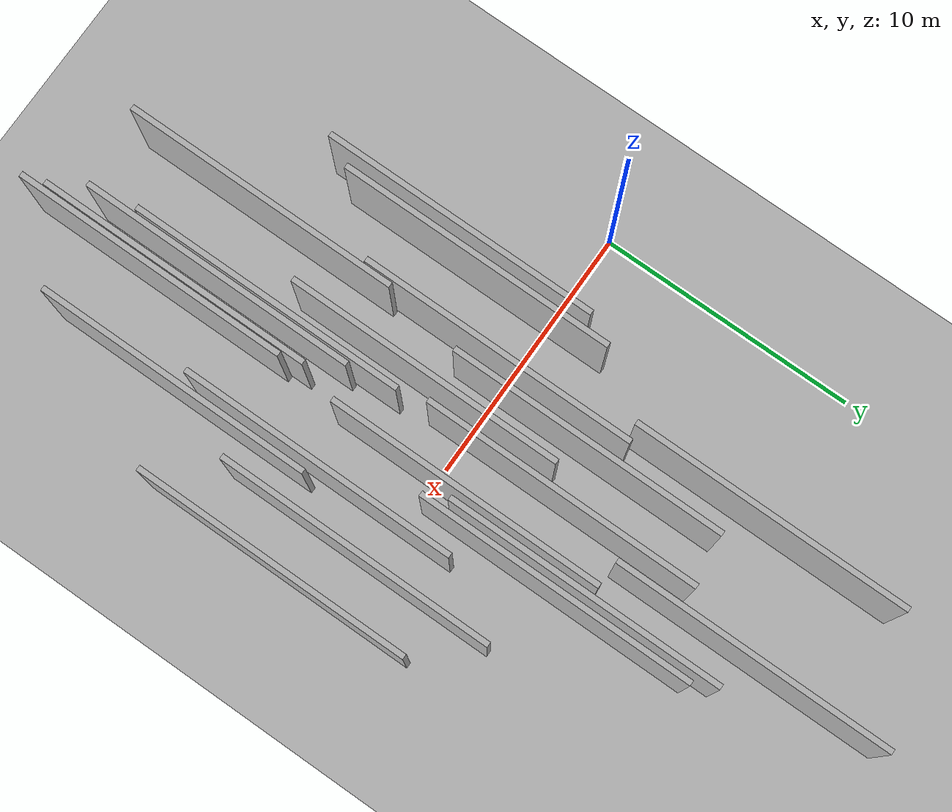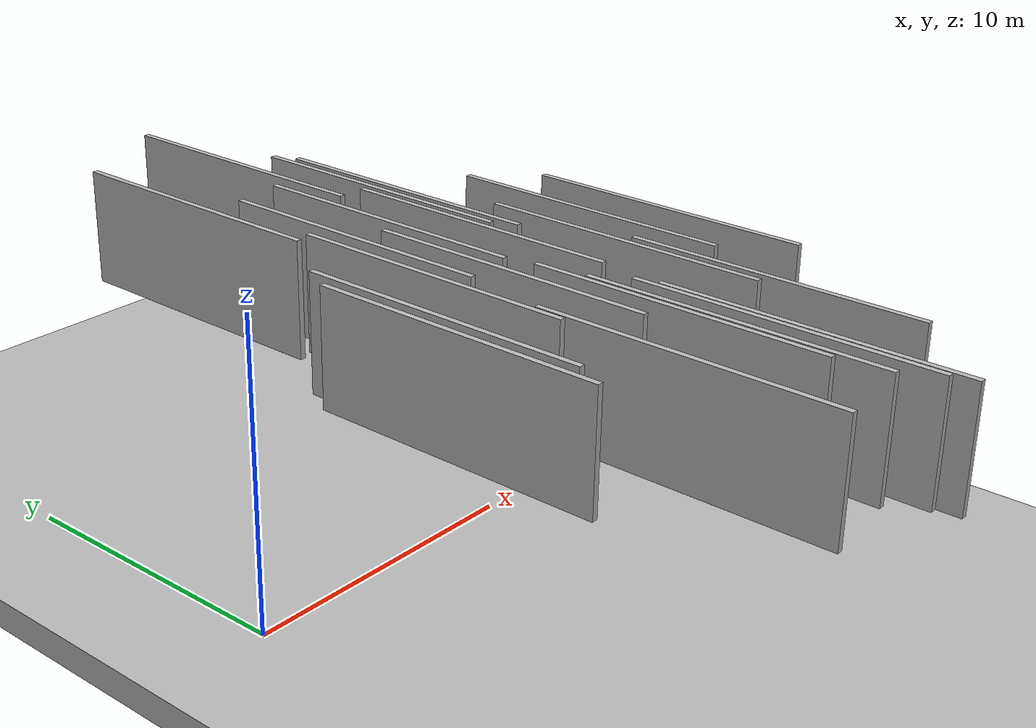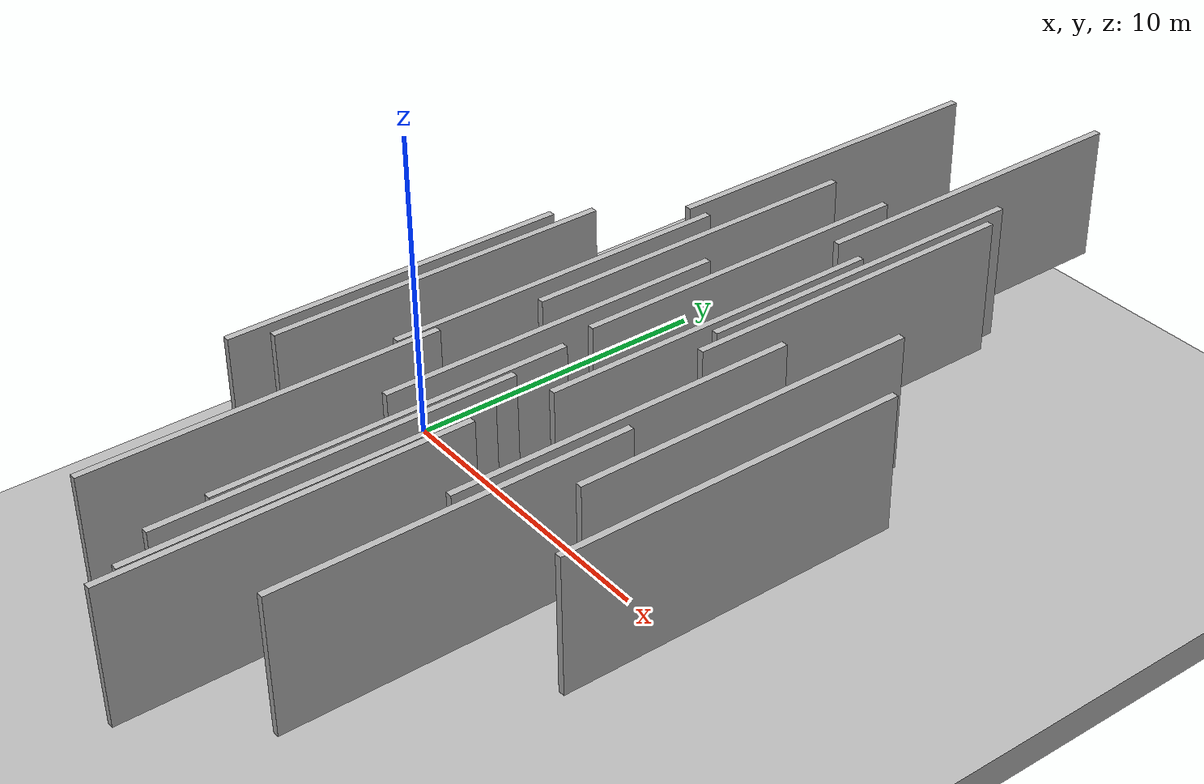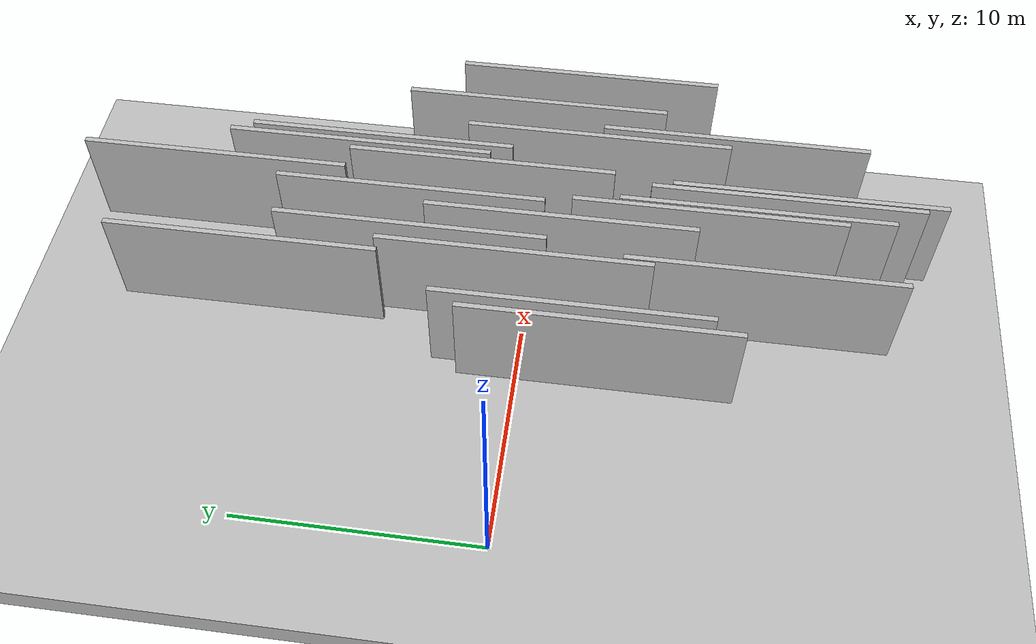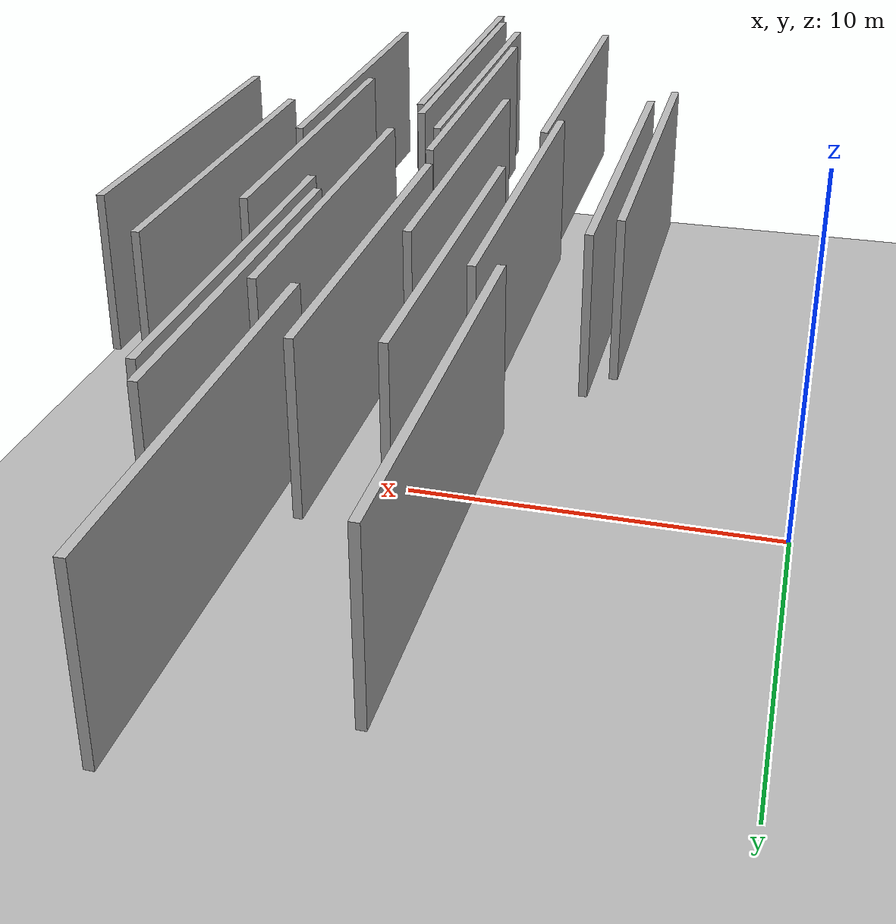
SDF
<?xml version="1.0" encoding="utf-8"?>

<sdf version="1.6">

   <world name="default">

      <gui fullscreen="0">

         <camera name="user_camera">

            <pose>-15 0 4.57585 0 0 0</pose>

            <view_controller>orbit</view_controller>

         </camera>

      </gui>

      <scene>

         <sky>

           <clouds>

             <speed>12</speed>

           </clouds>

         </sky>

         <ambient>0.4 0.4 0.4 1</ambient>

         <background>0.7 0.7 0.7 1</background>

         <shadows>1</shadows>

      </scene>

      <gravity>0 0 -9.8066</gravity>

      <magnetic_field>6e-06 2.3e-05 -4.2e-05</magnetic_field>

      <physics default="0" name="default_physics" type="ode">

         <ode>

            <solver>

               <type>quick</type>

               <iters>10</iters>

               <sor>1.0</sor>

               <use_dynamic_moi_rescaling>0</use_dynamic_moi_rescaling>

            </solver>

            <constraints>

               <cfm>0</cfm>

               <erp>0.2</erp>

               <contact_max_correcting_vel>100</contact_max_correcting_vel>

               <contact_surface_layer>0.001</contact_surface_layer>

            </constraints>

         </ode>

         <max_step_size>0.004</max_step_size>

         <real_time_factor>1</real_time_factor>

         <real_time_update_rate>250</real_time_update_rate>

      </physics>

      <light name="sun" type="directional">

         <cast_shadows>1</cast_shadows>

         <pose>0 0 10 0 0 0</pose>

         <diffuse>0.8 0.8 0.8 1</diffuse>

         <specular>0.2 0.2 0.2 1</specular>

         <attenuation>

            <range>1000</range>

            <constant>0.9</constant>

            <linear>0.01</linear>

            <quadratic>0.001</quadratic>

         </attenuation>

         <direction>-0.5 0.1 -0.9</direction>

      </light>

      <include>

         <name>ground_plane_1</name>

         <uri>model://HANNAS_ground_plane</uri>

         <pose>0 0 0  0 0 0</pose>

      </include>

      <include>

         <name>ground_plane_2</name>

         <uri>model://HANNAS_ground_plane</uri>

         <pose>100 0 0  0 0 0</pose>

      </include>

      <model name="HANNAS_wall_1">

         <static>1</static>

         <pose frame="">10.3235 11.7406 5.0 0.000000 0.000000 1.570796</pose>

         <link name="link">

            <pose frame="">0 0 2.00 0 0 0</pose>

            <collision name="collision">

               <geometry>

                  <box>

                     <size>10.00 0.2 4.00</size>

                  </box>

               </geometry>

               <max_contacts>10</max_contacts>

               <surface>

                  <contact>

                     <ode/>

                  </contact>

                  <bounce/>

                  <friction>

                     <torsional>

                        <ode/>

                     </torsional>

                     <ode/>

                  </friction>

               </surface>

            </collision>

            <visual name="visual">

               <cast_shadows>0</cast_shadows>

               <geometry>

                  <box>

                     <size>10.00 0.2 4.00</size>

                  </box>

               </geometry>

               <material>

                  <script>

                     <uri>model://HANNAS_wall/materials/scripts</uri>

                     <uri>model://HANNAS_wall/materials/textures</uri>

                     <name>vrc/HANNAS_wall</name>

                  </script>

               </material>

            </visual>

            <self_collide>0</self_collide>

            <enable_wind>0</enable_wind>

            <kinematic>0</kinematic>

         </link>

      </model>

      <model name="HANNAS_wall_2">

         <static>1</static>

         <pose frame="">13.1271 -2.4733 5.0 0.000000 0.000000 1.570796</pose>

         <link name="link">

            <pose frame="">0 0 2.00 0 0 0</pose>

            <collision name="collision">

               <geometry>

                  <box>

                     <size>10.00 0.2 4.00</size>

                  </box>

               </geometry>

               <max_contacts>10</max_contacts>

               <surface>

                  <contact>

                     <ode/>

                  </contact>

                  <bounce/>

                  <friction>

                     <torsional>

                        <ode/>

                     </torsional>

                     <ode/>

                  </friction>

               </surface>

            </collision>

            <visual name="visual">

               <cast_shadows>0</cast_shadows>

               <geometry>

                  <box>

                     <size>10.00 0.2 4.00</size>

                  </box>

               </geometry>

               <material>

                  <script>

                     <uri>model://HANNAS_wall/materials/scripts</uri>

                     <uri>model://HANNAS_wall/materials/textures</uri>

                     <name>vrc/HANNAS_wall</name>

                  </script>

               </material>

            </visual>

            <self_collide>0</self_collide>

            <enable_wind>0</enable_wind>

            <kinematic>0</kinematic>

         </link>

      </model>

      <model name="HANNAS_wall_3">

         <static>1</static>

         <pose frame="">11.2702 1.7563 5.0 0.000000 0.000000 1.570796</pose>

         <link name="link">

            <pose frame="">0 0 2.00 0 0 0</pose>

            <collision name="collision">

               <geometry>

                  <box>

                     <size>10.00 0.2 4.00</size>

                  </box>

               </geometry>

               <max_contacts>10</max_contacts>

               <surface>

                  <contact>

                     <ode/>

                  </contact>

                  <bounce/>

                  <friction>

                     <torsional>

                        <ode/>

                     </torsional>

                     <ode/>

                  </friction>

               </surface>

            </collision>

            <visual name="visual">

               <cast_shadows>0</cast_shadows>

               <geometry>

                  <box>

                     <size>10.00 0.2 4.00</size>

                  </box>

               </geometry>

               <material>

                  <script>

                     <uri>model://HANNAS_wall/materials/scripts</uri>

                     <uri>model://HANNAS_wall/materials/textures</uri>

                     <name>vrc/HANNAS_wall</name>

                  </script>

               </material>

            </visual>

            <self_collide>0</self_collide>

            <enable_wind>0</enable_wind>

            <kinematic>0</kinematic>

         </link>

      </model>

      <model name="HANNAS_wall_4">

         <static>1</static>

         <pose frame="">10.1074 -8.5069 5.0 0.000000 0.000000 1.570796</pose>

         <link name="link">

            <pose frame="">0 0 2.00 0 0 0</pose>

            <collision name="collision">

               <geometry>

                  <box>

                     <size>10.00 0.2 4.00</size>

                  </box>

               </geometry>

               <max_contacts>10</max_contacts>

               <surface>

                  <contact>

                     <ode/>

                  </contact>

                  <bounce/>

                  <friction>

                     <torsional>

                        <ode/>

                     </torsional>

                     <ode/>

                  </friction>

               </surface>

            </collision>

            <visual name="visual">

               <cast_shadows>0</cast_shadows>

               <geometry>

                  <box>

                     <size>10.00 0.2 4.00</size>

                  </box>

               </geometry>

               <material>

                  <script>

                     <uri>model://HANNAS_wall/materials/scripts</uri>

                     <uri>model://HANNAS_wall/materials/textures</uri>

                     <name>vrc/HANNAS_wall</name>

                  </script>

               </material>

            </visual>

            <self_collide>0</self_collide>

            <enable_wind>0</enable_wind>

            <kinematic>0</kinematic>

         </link>

      </model>

      <model name="HANNAS_wall_5">

         <static>1</static>

         <pose frame="">7.0733 0.0275 5.0 0.000000 0.000000 1.570796</pose>

         <link name="link">

            <pose frame="">0 0 2.00 0 0 0</pose>

            <collision name="collision">

               <geometry>

                  <box>

                     <size>10.00 0.2 4.00</size>

                  </box>

               </geometry>

               <max_contacts>10</max_contacts>

               <surface>

                  <contact>

                     <ode/>

                  </contact>

                  <bounce/>

                  <friction>

                     <torsional>

                        <ode/>

                     </torsional>

                     <ode/>

                  </friction>

               </surface>

            </collision>

            <visual name="visual">

               <cast_shadows>0</cast_shadows>

               <geometry>

                  <box>

                     <size>10.00 0.2 4.00</size>

                  </box>

               </geometry>

               <material>

                  <script>

                     <uri>model://HANNAS_wall/materials/scripts</uri>

                     <uri>model://HANNAS_wall/materials/textures</uri>

                     <name>vrc/HANNAS_wall</name>

                  </script>

               </material>

            </visual>

            <self_collide>0</self_collide>

            <enable_wind>0</enable_wind>

            <kinematic>0</kinematic>

         </link>

      </model>

      <model name="HANNAS_wall_6">

         <static>1</static>

         <pose frame="">4.9862 -2.2468 5.0 0.000000 0.000000 1.570796</pose>

         <link name="link">

            <pose frame="">0 0 2.00 0 0 0</pose>

            <collision name="collision">

               <geometry>

                  <box>

                     <size>10.00 0.2 4.00</size>

                  </box>

               </geometry>

               <max_contacts>10</max_contacts>

               <surface>

                  <contact>

                     <ode/>

                  </contact>

                  <bounce/>

                  <friction>

                     <torsional>

                        <ode/>

                     </torsional>

                     <ode/>

                  </friction>

               </surface>

            </collision>

            <visual name="visual">

               <cast_shadows>0</cast_shadows>

               <geometry>

                  <box>

                     <size>10.00 0.2 4.00</size>

                  </box>

               </geometry>

               <material>

                  <script>

                     <uri>model://HANNAS_wall/materials/scripts</uri>

                     <uri>model://HANNAS_wall/materials/textures</uri>

                     <name>vrc/HANNAS_wall</name>

                  </script>

               </material>

            </visual>

            <self_collide>0</self_collide>

            <enable_wind>0</enable_wind>

            <kinematic>0</kinematic>

         </link>

      </model>

      <model name="HANNAS_wall_7">

         <static>1</static>

         <pose frame="">9.5884 4.1789 5.0 0.000000 0.000000 1.570796</pose>

         <link name="link">

            <pose frame="">0 0 2.00 0 0 0</pose>

            <collision name="collision">

               <geometry>

                  <box>

                     <size>10.00 0.2 4.00</size>

                  </box>

               </geometry>

               <max_contacts>10</max_contacts>

               <surface>

                  <contact>

                     <ode/>

                  </contact>

                  <bounce/>

                  <friction>

                     <torsional>

                        <ode/>

                     </torsional>

                     <ode/>

                  </friction>

               </surface>

            </collision>

            <visual name="visual">

               <cast_shadows>0</cast_shadows>

               <geometry>

                  <box>

                     <size>10.00 0.2 4.00</size>

                  </box>

               </geometry>

               <material>

                  <script>

                     <uri>model://HANNAS_wall/materials/scripts</uri>

                     <uri>model://HANNAS_wall/materials/textures</uri>

                     <name>vrc/HANNAS_wall</name>

                  </script>

               </material>

            </visual>

            <self_collide>0</self_collide>

            <enable_wind>0</enable_wind>

            <kinematic>0</kinematic>

         </link>

      </model>

      <model name="HANNAS_wall_8">

         <static>1</static>

         <pose frame="">13.6005 -7.6296 5.0 0.000000 0.000000 1.570796</pose>

         <link name="link">

            <pose frame="">0 0 2.00 0 0 0</pose>

            <collision name="collision">

               <geometry>

                  <box>

                     <size>10.00 0.2 4.00</size>

                  </box>

               </geometry>

               <max_contacts>10</max_contacts>

               <surface>

                  <contact>

                     <ode/>

                  </contact>

                  <bounce/>

                  <friction>

                     <torsional>

                        <ode/>

                     </torsional>

                     <ode/>

                  </friction>

               </surface>

            </collision>

            <visual name="visual">

               <cast_shadows>0</cast_shadows>

               <geometry>

                  <box>

                     <size>10.00 0.2 4.00</size>

                  </box>

               </geometry>

               <material>

                  <script>

                     <uri>model://HANNAS_wall/materials/scripts</uri>

                     <uri>model://HANNAS_wall/materials/textures</uri>

                     <name>vrc/HANNAS_wall</name>

                  </script>

               </material>

            </visual>

            <self_collide>0</self_collide>

            <enable_wind>0</enable_wind>

            <kinematic>0</kinematic>

         </link>

      </model>

      <model name="HANNAS_wall_9">

         <static>1</static>

         <pose frame="">11.6749 6.4782 5.0 0.000000 0.000000 1.570796</pose>

         <link name="link">

            <pose frame="">0 0 2.00 0 0 0</pose>

            <collision name="collision">

               <geometry>

                  <box>

                     <size>10.00 0.2 4.00</size>

                  </box>

               </geometry>

               <max_contacts>10</max_contacts>

               <surface>

                  <contact>

                     <ode/>

                  </contact>

                  <bounce/>

                  <friction>

                     <torsional>

                        <ode/>

                     </torsional>

                     <ode/>

                  </friction>

               </surface>

            </collision>

            <visual name="visual">

               <cast_shadows>0</cast_shadows>

               <geometry>

                  <box>

                     <size>10.00 0.2 4.00</size>

                  </box>

               </geometry>

               <material>

                  <script>

                     <uri>model://HANNAS_wall/materials/scripts</uri>

                     <uri>model://HANNAS_wall/materials/textures</uri>

                     <name>vrc/HANNAS_wall</name>

                  </script>

               </material>

            </visual>

            <self_collide>0</self_collide>

            <enable_wind>0</enable_wind>

            <kinematic>0</kinematic>

         </link>

      </model>

      <model name="HANNAS_wall_10">

         <static>1</static>

         <pose frame="">8.8952 -1.4643 5.0 0.000000 0.000000 1.570796</pose>

         <link name="link">

            <pose frame="">0 0 2.00 0 0 0</pose>

            <collision name="collision">

               <geometry>

                  <box>

                     <size>10.00 0.2 4.00</size>

                  </box>

               </geometry>

               <max_contacts>10</max_contacts>

               <surface>

                  <contact>

                     <ode/>

                  </contact>

                  <bounce/>

                  <friction>

                     <torsional>

                        <ode/>

                     </torsional>

                     <ode/>

                  </friction>

               </surface>

            </collision>

            <visual name="visual">

               <cast_shadows>0</cast_shadows>

               <geometry>

                  <box>

                     <size>10.00 0.2 4.00</size>

                  </box>

               </geometry>

               <material>

                  <script>

                     <uri>model://HANNAS_wall/materials/scripts</uri>

                     <uri>model://HANNAS_wall/materials/textures</uri>

                     <name>vrc/HANNAS_wall</name>

                  </script>

               </material>

            </visual>

            <self_collide>0</self_collide>

            <enable_wind>0</enable_wind>

            <kinematic>0</kinematic>

         </link>

      </model>

      <model name="HANNAS_wall_11">

         <static>1</static>

         <pose frame="">9.8429 -6.7960 5.0 0.000000 0.000000 1.570796</pose>

         <link name="link">

            <pose frame="">0 0 2.00 0 0 0</pose>

            <collision name="collision">

               <geometry>

                  <box>

                     <size>10.00 0.2 4.00</size>

                  </box>

               </geometry>

               <max_contacts>10</max_contacts>

               <surface>

                  <contact>

                     <ode/>

                  </contact>

                  <bounce/>

                  <friction>

                     <torsional>

                        <ode/>

                     </torsional>

                     <ode/>

                  </friction>

               </surface>

            </collision>

            <visual name="visual">

               <cast_shadows>0</cast_shadows>

               <geometry>

                  <box>

                     <size>10.00 0.2 4.00</size>

                  </box>

               </geometry>

               <material>

                  <script>

                     <uri>model://HANNAS_wall/materials/scripts</uri>

                     <uri>model://HANNAS_wall/materials/textures</uri>

                     <name>vrc/HANNAS_wall</name>

                  </script>

               </material>

            </visual>

            <self_collide>0</self_collide>

            <enable_wind>0</enable_wind>

            <kinematic>0</kinematic>

         </link>

      </model>

      <model name="HANNAS_wall_12">

         <static>1</static>

         <pose frame="">14.6608 0.0371 5.0 0.000000 0.000000 1.570796</pose>

         <link name="link">

            <pose frame="">0 0 2.00 0 0 0</pose>

            <collision name="collision">

               <geometry>

                  <box>

                     <size>10.00 0.2 4.00</size>

                  </box>

               </geometry>

               <max_contacts>10</max_contacts>

               <surface>

                  <contact>

                     <ode/>

                  </contact>

                  <bounce/>

                  <friction>

                     <torsional>

                        <ode/>

                     </torsional>

                     <ode/>

                  </friction>

               </surface>

            </collision>

            <visual name="visual">

               <cast_shadows>0</cast_shadows>

               <geometry>

                  <box>

                     <size>10.00 0.2 4.00</size>

                  </box>

               </geometry>

               <material>

                  <script>

                     <uri>model://HANNAS_wall/materials/scripts</uri>

                     <uri>model://HANNAS_wall/materials/textures</uri>

                     <name>vrc/HANNAS_wall</name>

                  </script>

               </material>

            </visual>

            <self_collide>0</self_collide>

            <enable_wind>0</enable_wind>

            <kinematic>0</kinematic>

         </link>

      </model>

      <model name="HANNAS_wall_13">

         <static>1</static>

         <pose frame="">4.4382 -3.2554 5.0 0.000000 0.000000 1.570796</pose>

         <link name="link">

            <pose frame="">0 0 2.00 0 0 0</pose>

            <collision name="collision">

               <geometry>

                  <box>

                     <size>10.00 0.2 4.00</size>

                  </box>

               </geometry>

               <max_contacts>10</max_contacts>

               <surface>

                  <contact>

                     <ode/>

                  </contact>

                  <bounce/>

                  <friction>

                     <torsional>

                        <ode/>

                     </torsional>

                     <ode/>

                  </friction>

               </surface>

            </collision>

            <visual name="visual">

               <cast_shadows>0</cast_shadows>

               <geometry>

                  <box>

                     <size>10.00 0.2 4.00</size>

                  </box>

               </geometry>

               <material>

                  <script>

                     <uri>model://HANNAS_wall/materials/scripts</uri>

                     <uri>model://HANNAS_wall/materials/textures</uri>

                     <name>vrc/HANNAS_wall</name>

                  </script>

               </material>

            </visual>

            <self_collide>0</self_collide>

            <enable_wind>0</enable_wind>

            <kinematic>0</kinematic>

         </link>

      </model>

      <model name="HANNAS_wall_14">

         <static>1</static>

         <pose frame="">12.0910 5.6790 5.0 0.000000 0.000000 1.570796</pose>

         <link name="link">

            <pose frame="">0 0 2.00 0 0 0</pose>

            <collision name="collision">

               <geometry>

                  <box>

                     <size>10.00 0.2 4.00</size>

                  </box>

               </geometry>

               <max_contacts>10</max_contacts>

               <surface>

                  <contact>

                     <ode/>

                  </contact>

                  <bounce/>

                  <friction>

                     <torsional>

                        <ode/>

                     </torsional>

                     <ode/>

                  </friction>

               </surface>

            </collision>

            <visual name="visual">

               <cast_shadows>0</cast_shadows>

               <geometry>

                  <box>

                     <size>10.00 0.2 4.00</size>

                  </box>

               </geometry>

               <material>

                  <script>

                     <uri>model://HANNAS_wall/materials/scripts</uri>

                     <uri>model://HANNAS_wall/materials/textures</uri>

                     <name>vrc/HANNAS_wall</name>

                  </script>

               </material>

            </visual>

            <self_collide>0</self_collide>

            <enable_wind>0</enable_wind>

            <kinematic>0</kinematic>

         </link>

      </model>

      <model name="HANNAS_wall_15">

         <static>1</static>

         <pose frame="">16.4205 -1.8314 5.0 0.000000 0.000000 1.570796</pose>

         <link name="link">

            <pose frame="">0 0 2.00 0 0 0</pose>

            <collision name="collision">

               <geometry>

                  <box>

                     <size>10.00 0.2 4.00</size>

                  </box>

               </geometry>

               <max_contacts>10</max_contacts>

               <surface>

                  <contact>

                     <ode/>

                  </contact>

                  <bounce/>

                  <friction>

                     <torsional>

                        <ode/>

                     </torsional>

                     <ode/>

                  </friction>

               </surface>

            </collision>

            <visual name="visual">

               <cast_shadows>0</cast_shadows>

               <geometry>

                  <box>

                     <size>10.00 0.2 4.00</size>

                  </box>

               </geometry>

               <material>

                  <script>

                     <uri>model://HANNAS_wall/materials/scripts</uri>

                     <uri>model://HANNAS_wall/materials/textures</uri>

                     <name>vrc/HANNAS_wall</name>

                  </script>

               </material>

            </visual>

            <self_collide>0</self_collide>

            <enable_wind>0</enable_wind>

            <kinematic>0</kinematic>

         </link>

      </model>

      <model name="HANNAS_wall_16">

         <static>1</static>

         <pose frame="">10.8416 -9.6292 5.0 0.000000 0.000000 1.570796</pose>

         <link name="link">

            <pose frame="">0 0 2.00 0 0 0</pose>

            <collision name="collision">

               <geometry>

                  <box>

                     <size>10.00 0.2 4.00</size>

                  </box>

               </geometry>

               <max_contacts>10</max_contacts>

               <surface>

                  <contact>

                     <ode/>

                  </contact>

                  <bounce/>

                  <friction>

                     <torsional>

                        <ode/>

                     </torsional>

                     <ode/>

                  </friction>

               </surface>

            </collision>

            <visual name="visual">

               <cast_shadows>0</cast_shadows>

               <geometry>

                  <box>

                     <size>10.00 0.2 4.00</size>

                  </box>

               </geometry>

               <material>

                  <script>

                     <uri>model://HANNAS_wall/materials/scripts</uri>

                     <uri>model://HANNAS_wall/materials/textures</uri>

                     <name>vrc/HANNAS_wall</name>

                  </script>

               </material>

            </visual>

            <self_collide>0</self_collide>

            <enable_wind>0</enable_wind>

            <kinematic>0</kinematic>

         </link>

      </model>

      <model name="HANNAS_wall_17">

         <static>1</static>

         <pose frame="">7.3186 -8.8580 5.0 0.000000 0.000000 1.570796</pose>

         <link name="link">

            <pose frame="">0 0 2.00 0 0 0</pose>

            <collision name="collision">

               <geometry>

                  <box>

                     <size>10.00 0.2 4.00</size>

                  </box>

               </geometry>

               <max_contacts>10</max_contacts>

               <surface>

                  <contact>

                     <ode/>

                  </contact>

                  <bounce/>

                  <friction>

                     <torsional>

                        <ode/>

                     </torsional>

                     <ode/>

                  </friction>

               </surface>

            </collision>

            <visual name="visual">

               <cast_shadows>0</cast_shadows>

               <geometry>

                  <box>

                     <size>10.00 0.2 4.00</size>

                  </box>

               </geometry>

               <material>

                  <script>

                     <uri>model://HANNAS_wall/materials/scripts</uri>

                     <uri>model://HANNAS_wall/materials/textures</uri>

                     <name>vrc/HANNAS_wall</name>

                  </script>

               </material>

            </visual>

            <self_collide>0</self_collide>

            <enable_wind>0</enable_wind>

            <kinematic>0</kinematic>

         </link>

      </model>

      <model name="HANNAS_wall_18">

         <static>1</static>

         <pose frame="">7.8093 3.9134 5.0 0.000000 0.000000 1.570796</pose>

         <link name="link">

            <pose frame="">0 0 2.00 0 0 0</pose>

            <collision name="collision">

               <geometry>

                  <box>

                     <size>10.00 0.2 4.00</size>

                  </box>

               </geometry>

               <max_contacts>10</max_contacts>

               <surface>

                  <contact>

                     <ode/>

                  </contact>

                  <bounce/>

                  <friction>

                     <torsional>

                        <ode/>

                     </torsional>

                     <ode/>

                  </friction>

               </surface>

            </collision>

            <visual name="visual">

               <cast_shadows>0</cast_shadows>

               <geometry>

                  <box>

                     <size>10.00 0.2 4.00</size>

                  </box>

               </geometry>

               <material>

                  <script>

                     <uri>model://HANNAS_wall/materials/scripts</uri>

                     <uri>model://HANNAS_wall/materials/textures</uri>

                     <name>vrc/HANNAS_wall</name>

                  </script>

               </material>

            </visual>

            <self_collide>0</self_collide>

            <enable_wind>0</enable_wind>

            <kinematic>0</kinematic>

         </link>

      </model>

      <model name="HANNAS_wall_19">

         <static>1</static>

         <pose frame="">11.0723 -10.3950 5.0 0.000000 0.000000 1.570796</pose>

         <link name="link">

            <pose frame="">0 0 2.00 0 0 0</pose>

            <collision name="collision">

               <geometry>

                  <box>

                     <size>10.00 0.2 4.00</size>

                  </box>

               </geometry>

               <max_contacts>10</max_contacts>

               <surface>

                  <contact>

                     <ode/>

                  </contact>

                  <bounce/>

                  <friction>

                     <torsional>

                        <ode/>

                     </torsional>

                     <ode/>

                  </friction>

               </surface>

            </collision>

            <visual name="visual">

               <cast_shadows>0</cast_shadows>

               <geometry>

                  <box>

                     <size>10.00 0.2 4.00</size>

                  </box>

               </geometry>

               <material>

                  <script>

                     <uri>model://HANNAS_wall/materials/scripts</uri>

                     <uri>model://HANNAS_wall/materials/textures</uri>

                     <name>vrc/HANNAS_wall</name>

                  </script>

               </material>

            </visual>

            <self_collide>0</self_collide>

            <enable_wind>0</enable_wind>

            <kinematic>0</kinematic>

         </link>

      </model>

      <model name="HANNAS_wall_20">

         <static>1</static>

         <pose frame="">6.4788 9.8083 5.0 0.000000 0.000000 1.570796</pose>

         <link name="link">

            <pose frame="">0 0 2.00 0 0 0</pose>

            <collision name="collision">

               <geometry>

                  <box>

                     <size>10.00 0.2 4.00</size>

                  </box>

               </geometry>

               <max_contacts>10</max_contacts>

               <surface>

                  <contact>

                     <ode/>

                  </contact>

                  <bounce/>

                  <friction>

                     <torsional>

                        <ode/>

                     </torsional>

                     <ode/>

                  </friction>

               </surface>

            </collision>

            <visual name="visual">

               <cast_shadows>0</cast_shadows>

               <geometry>

                  <box>

                     <size>10.00 0.2 4.00</size>

                  </box>

               </geometry>

               <material>

                  <script>

                     <uri>model://HANNAS_wall/materials/scripts</uri>

                     <uri>model://HANNAS_wall/materials/textures</uri>

                     <name>vrc/HANNAS_wall</name>

                  </script>

               </material>

            </visual>

            <self_collide>0</self_collide>

            <enable_wind>0</enable_wind>

            <kinematic>0</kinematic>

         </link>

      </model>

   </world>

</sdf>

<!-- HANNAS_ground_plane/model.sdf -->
<sdf version="1.4">
<model name="HANNAS_ground_plane">
  <static>true</static>
    <link name="link">
      <collision name="collision">
        <geometry>
          <plane>
            <normal>0 0 1</normal>
            <size>1000 1000</size>
          </plane>
        </geometry>
        <surface>
          <friction>
            <ode>
              <mu>100</mu>
              <mu2>50</mu2>
            </ode>
          </friction>
        </surface>
      </collision>
      <visual name="visual">
        <cast_shadows>false</cast_shadows>
        <geometry>
          <plane>
            <normal>0 0 1</normal>
            <size>1000 1000</size>
          </plane>
        </geometry>
        <material>
          <script>
            <uri>model://HANNAS_ground_plane/materials/scripts/HANNAS_ground_plane.material</uri>
	    <uri>model://HANNAS_ground_plane/materials/textures</uri>
            <name>HANNASGroundPlane/Image</name>
          </script>
        </material>
      </visual>
    </link>
  </model>
</sdf>
